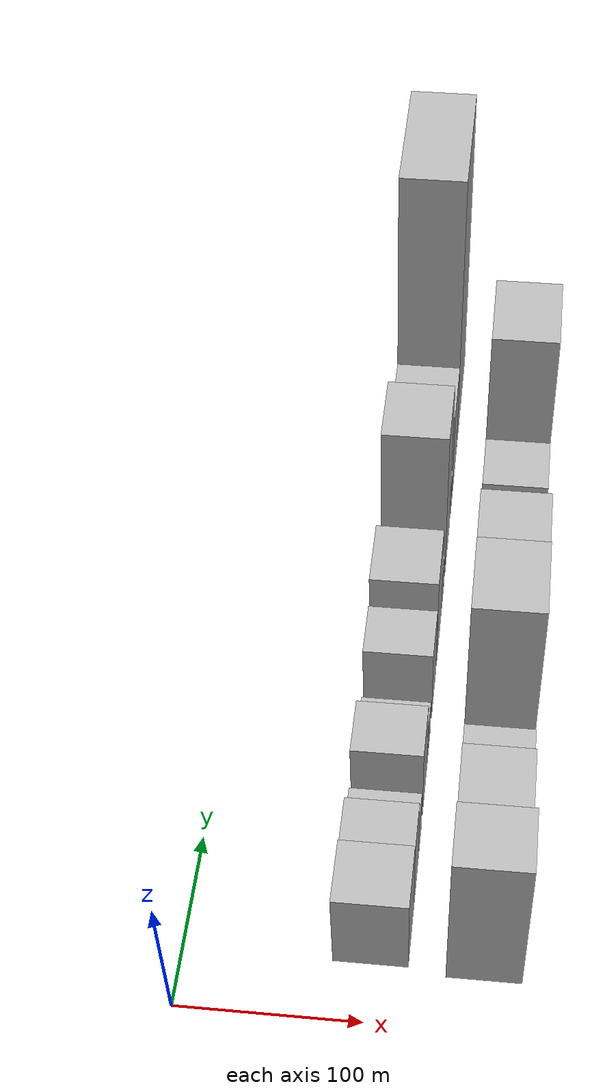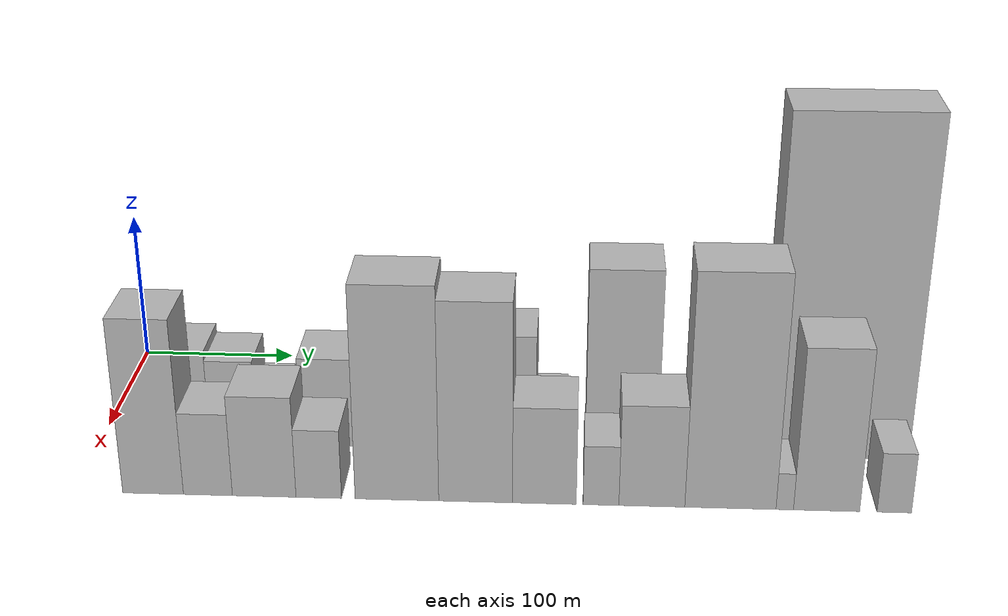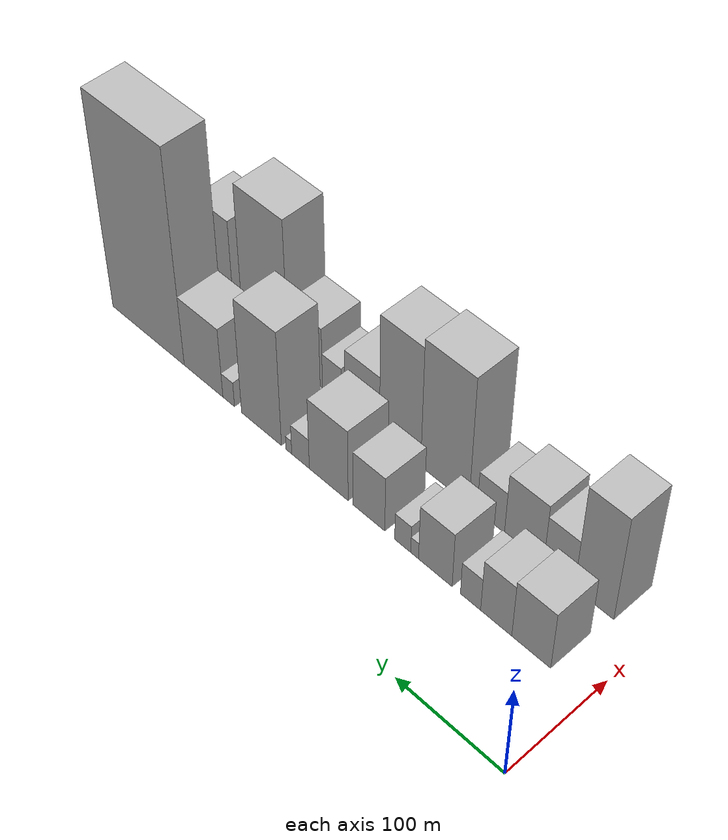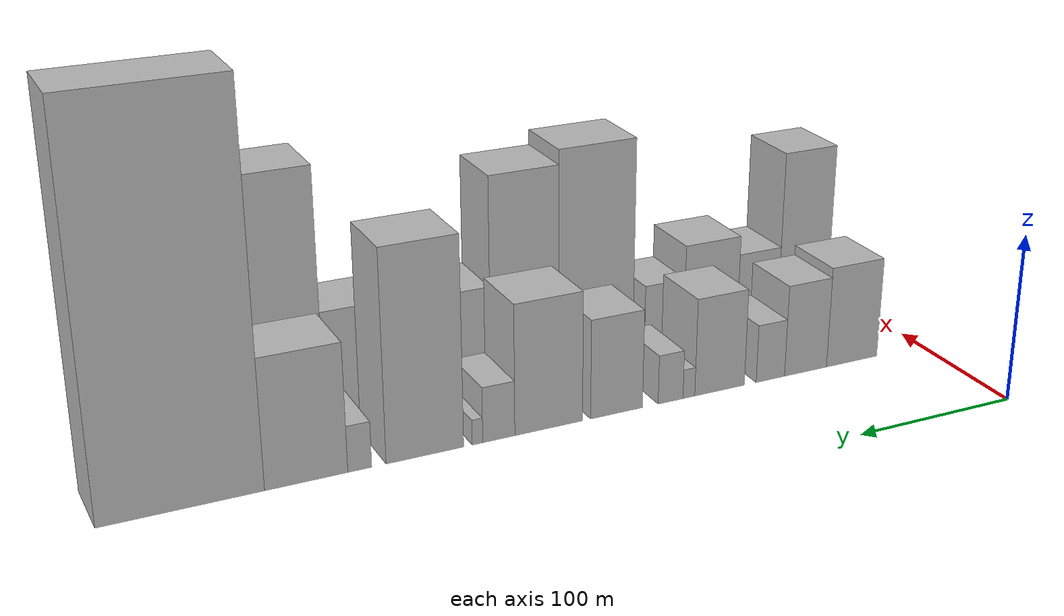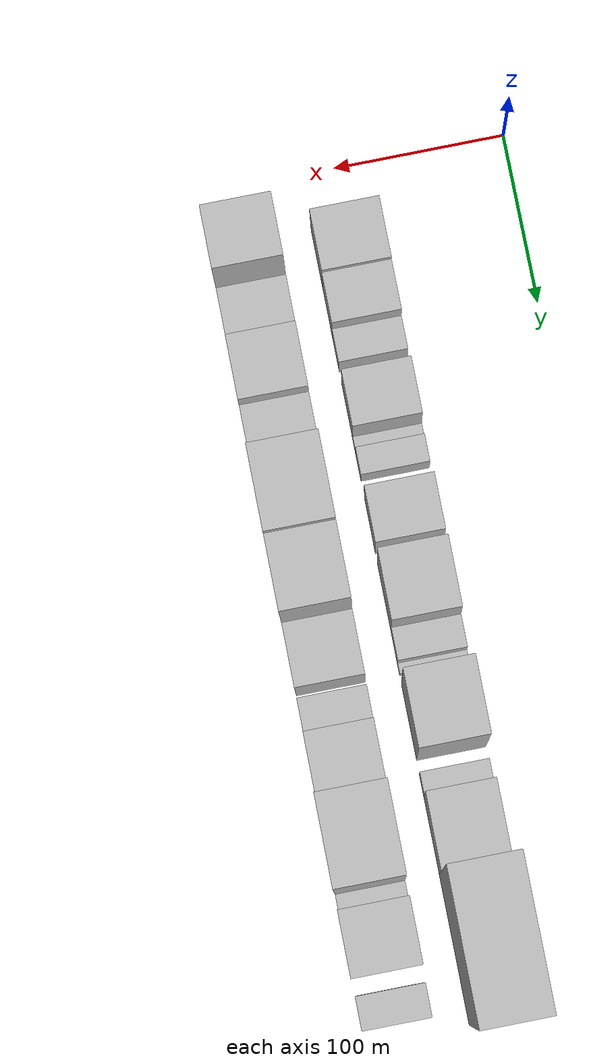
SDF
<sdf version="1.6">
 <world name="default">
  <model name="building_15">
   <static>1</static>
   <pose>100.0000 50.7926 0 0.000000 0.000000 0.000000</pose>
   <link name="link">
    <pose>0 0 31.50 0 0 0</pose>
    <collision name="collision"><geometry><box><size>40.0000 35.7253 63.0000</size></box></geometry></collision>
    <visual name="visual">
     <cast_shadows>0</cast_shadows>
     <geometry><box><size>40.0000 35.7253 63.0000</size></box></geometry>
     <material>
      <script>
       <uri>model://HANNAS_wall/materials/scripts</uri>
       <uri>model://HANNAS_wall/materials/textures</uri>
       <name>vrc/HANNAS_wall</name>
      </script>
     </material>
    </visual>
   </link>
  </model>
  <model name="building_16">
   <static>1</static>
   <pose>100.0000 83.2587 0 0.000000 0.000000 0.000000</pose>
   <link name="link">
    <pose>0 0 28.50 0 0 0</pose>
    <collision name="collision"><geometry><box><size>40.0000 29.2071 57.0000</size></box></geometry></collision>
    <visual name="visual">
     <cast_shadows>0</cast_shadows>
     <geometry><box><size>40.0000 29.2071 57.0000</size></box></geometry>
     <material>
      <script>
       <uri>model://HANNAS_wall/materials/scripts</uri>
       <uri>model://HANNAS_wall/materials/textures</uri>
       <name>vrc/HANNAS_wall</name>
      </script>
     </material>
    </visual>
   </link>
  </model>
  <model name="building_17">
   <static>1</static>
   <pose>100.0000 107.5433 0 0.000000 0.000000 0.000000</pose>
   <link name="link">
    <pose>0 0 18.00 0 0 0</pose>
    <collision name="collision"><geometry><box><size>40.0000 19.3620 36.0000</size></box></geometry></collision>
    <visual name="visual">
     <cast_shadows>0</cast_shadows>
     <geometry><box><size>40.0000 19.3620 36.0000</size></box></geometry>
     <material>
      <script>
       <uri>model://HANNAS_wall/materials/scripts</uri>
       <uri>model://HANNAS_wall/materials/textures</uri>
       <name>vrc/HANNAS_wall</name>
      </script>
     </material>
    </visual>
   </link>
  </model>
  <model name="building_18">
   <static>1</static>
   <pose>100.0000 141.6739 0 0.000000 0.000000 0.000000</pose>
   <link name="link">
    <pose>0 0 30.00 0 0 0</pose>
    <collision name="collision"><geometry><box><size>40.0000 32.8991 60.0000</size></box></geometry></collision>
    <visual name="visual">
     <cast_shadows>0</cast_shadows>
     <geometry><box><size>40.0000 32.8991 60.0000</size></box></geometry>
     <material>
      <script>
       <uri>model://HANNAS_wall/materials/scripts</uri>
       <uri>model://HANNAS_wall/materials/textures</uri>
       <name>vrc/HANNAS_wall</name>
      </script>
     </material>
    </visual>
   </link>
  </model>
  <model name="building_19">
   <static>1</static>
   <pose>100.0000 161.9813 0 0.000000 0.000000 0.000000</pose>
   <link name="link">
    <pose>0 0 9.00 0 0 0</pose>
    <collision name="collision"><geometry><box><size>40.0000 7.7157 18.0000</size></box></geometry></collision>
    <visual name="visual">
     <cast_shadows>0</cast_shadows>
     <geometry><box><size>40.0000 7.7157 18.0000</size></box></geometry>
     <material>
      <script>
       <uri>model://HANNAS_wall/materials/scripts</uri>
       <uri>model://HANNAS_wall/materials/textures</uri>
       <name>vrc/HANNAS_wall</name>
      </script>
     </material>
    </visual>
   </link>
  </model>
  <model name="building_20">
   <static>1</static>
   <pose>100.0000 173.8858 0 0.000000 0.000000 0.000000</pose>
   <link name="link">
    <pose>0 0 15.00 0 0 0</pose>
    <collision name="collision"><geometry><box><size>40.0000 16.0933 30.0000</size></box></geometry></collision>
    <visual name="visual">
     <cast_shadows>0</cast_shadows>
     <geometry><box><size>40.0000 16.0933 30.0000</size></box></geometry>
     <material>
      <script>
       <uri>model://HANNAS_wall/materials/scripts</uri>
       <uri>model://HANNAS_wall/materials/textures</uri>
       <name>vrc/HANNAS_wall</name>
      </script>
     </material>
    </visual>
   </link>
  </model>
  <model name="building_21">
   <static>1</static>
   <pose>100.0000 208.2888 0 0.000000 0.000000 0.000000</pose>
   <link name="link">
    <pose>0 0 30.00 0 0 0</pose>
    <collision name="collision"><geometry><box><size>40.0000 32.7128 60.0000</size></box></geometry></collision>
    <visual name="visual">
     <cast_shadows>0</cast_shadows>
     <geometry><box><size>40.0000 32.7128 60.0000</size></box></geometry>
     <material>
      <script>
       <uri>model://HANNAS_wall/materials/scripts</uri>
       <uri>model://HANNAS_wall/materials/textures</uri>
       <name>vrc/HANNAS_wall</name>
      </script>
     </material>
    </visual>
   </link>
  </model>
  <model name="building_22">
   <static>1</static>
   <pose>100.0000 250.1986 0 0.000000 0.000000 0.000000</pose>
   <link name="link">
    <pose>0 0 39.00 0 0 0</pose>
    <collision name="collision"><geometry><box><size>40.0000 41.1067 78.0000</size></box></geometry></collision>
    <visual name="visual">
     <cast_shadows>0</cast_shadows>
     <geometry><box><size>40.0000 41.1067 78.0000</size></box></geometry>
     <material>
      <script>
       <uri>model://HANNAS_wall/materials/scripts</uri>
       <uri>model://HANNAS_wall/materials/textures</uri>
       <name>vrc/HANNAS_wall</name>
      </script>
     </material>
    </visual>
   </link>
  </model>
  <model name="building_23">
   <static>1</static>
   <pose>100.0000 280.2710 0 0.000000 0.000000 0.000000</pose>
   <link name="link">
    <pose>0 0 16.50 0 0 0</pose>
    <collision name="collision"><geometry><box><size>40.0000 19.0381 33.0000</size></box></geometry></collision>
    <visual name="visual">
     <cast_shadows>0</cast_shadows>
     <geometry><box><size>40.0000 19.0381 33.0000</size></box></geometry>
     <material>
      <script>
       <uri>model://HANNAS_wall/materials/scripts</uri>
       <uri>model://HANNAS_wall/materials/textures</uri>
       <name>vrc/HANNAS_wall</name>
      </script>
     </material>
    </visual>
   </link>
  </model>
  <model name="building_24">
   <static>1</static>
   <pose>100.0000 292.8816 0 0.000000 0.000000 0.000000</pose>
   <link name="link">
    <pose>0 0 7.50 0 0 0</pose>
    <collision name="collision"><geometry><box><size>40.0000 6.1832 15.0000</size></box></geometry></collision>
    <visual name="visual">
     <cast_shadows>0</cast_shadows>
     <geometry><box><size>40.0000 6.1832 15.0000</size></box></geometry>
     <material>
      <script>
       <uri>model://HANNAS_wall/materials/scripts</uri>
       <uri>model://HANNAS_wall/materials/textures</uri>
       <name>vrc/HANNAS_wall</name>
      </script>
     </material>
    </visual>
   </link>
  </model>
  <model name="building_25">
   <static>1</static>
   <pose>100.0000 323.1472 0 0.000000 0.000000 0.000000</pose>
   <link name="link">
    <pose>0 0 61.50 0 0 0</pose>
    <collision name="collision"><geometry><box><size>40.0000 44.3479 123.0000</size></box></geometry></collision>
    <visual name="visual">
     <cast_shadows>0</cast_shadows>
     <geometry><box><size>40.0000 44.3479 123.0000</size></box></geometry>
     <material>
      <script>
       <uri>model://HANNAS_wall/materials/scripts</uri>
       <uri>model://HANNAS_wall/materials/textures</uri>
       <name>vrc/HANNAS_wall</name>
      </script>
     </material>
    </visual>
   </link>
  </model>
  <model name="building_26">
   <static>1</static>
   <pose>100.0000 359.9304 0 0.000000 0.000000 0.000000</pose>
   <link name="link">
    <pose>0 0 13.50 0 0 0</pose>
    <collision name="collision"><geometry><box><size>40.0000 13.2186 27.0000</size></box></geometry></collision>
    <visual name="visual">
     <cast_shadows>0</cast_shadows>
     <geometry><box><size>40.0000 13.2186 27.0000</size></box></geometry>
     <material>
      <script>
       <uri>model://HANNAS_wall/materials/scripts</uri>
       <uri>model://HANNAS_wall/materials/textures</uri>
       <name>vrc/HANNAS_wall</name>
      </script>
     </material>
    </visual>
   </link>
  </model>
  <model name="building_27">
   <static>1</static>
   <pose>100.0000 388.9986 0 0.000000 0.000000 0.000000</pose>
   <link name="link">
    <pose>0 0 37.50 0 0 0</pose>
    <collision name="collision"><geometry><box><size>40.0000 44.9178 75.0000</size></box></geometry></collision>
    <visual name="visual">
     <cast_shadows>0</cast_shadows>
     <geometry><box><size>40.0000 44.9178 75.0000</size></box></geometry>
     <material>
      <script>
       <uri>model://HANNAS_wall/materials/scripts</uri>
       <uri>model://HANNAS_wall/materials/textures</uri>
       <name>vrc/HANNAS_wall</name>
      </script>
     </material>
    </visual>
   </link>
  </model>
  <model name="building_28">
   <static>1</static>
   <pose>100.0000 454.6570 0 0.000000 0.000000 0.000000</pose>
   <link name="link">
    <pose>0 0 111.00 0 0 0</pose>
    <collision name="collision"><geometry><box><size>40.0000 86.3990 222.0000</size></box></geometry></collision>
    <visual name="visual">
     <cast_shadows>0</cast_shadows>
     <geometry><box><size>40.0000 86.3990 222.0000</size></box></geometry>
     <material>
      <script>
       <uri>model://HANNAS_wall/materials/scripts</uri>
       <uri>model://HANNAS_wall/materials/textures</uri>
       <name>vrc/HANNAS_wall</name>
      </script>
     </material>
    </visual>
   </link>
  </model>
  <model name="building_40">
   <static>1</static>
   <pose>160.0000 47.2035 0 0.000000 0.000000 0.000000</pose>
   <link name="link">
    <pose>0 0 57.00 0 0 0</pose>
    <collision name="collision"><geometry><box><size>40.0000 36.0578 114.0000</size></box></geometry></collision>
    <visual name="visual">
     <cast_shadows>0</cast_shadows>
     <geometry><box><size>40.0000 36.0578 114.0000</size></box></geometry>
     <material>
      <script>
       <uri>model://HANNAS_wall/materials/scripts</uri>
       <uri>model://HANNAS_wall/materials/textures</uri>
       <name>vrc/HANNAS_wall</name>
      </script>
     </material>
    </visual>
   </link>
  </model>
  <model name="building_41">
   <static>1</static>
   <pose>160.0000 79.7289 0 0.000000 0.000000 0.000000</pose>
   <link name="link">
    <pose>0 0 27.00 0 0 0</pose>
    <collision name="collision"><geometry><box><size>40.0000 28.9931 54.0000</size></box></geometry></collision>
    <visual name="visual">
     <cast_shadows>0</cast_shadows>
     <geometry><box><size>40.0000 28.9931 54.0000</size></box></geometry>
     <material>
      <script>
       <uri>model://HANNAS_wall/materials/scripts</uri>
       <uri>model://HANNAS_wall/materials/textures</uri>
       <name>vrc/HANNAS_wall</name>
      </script>
     </material>
    </visual>
   </link>
  </model>
  <model name="building_42">
   <static>1</static>
   <pose>160.0000 113.0043 0 0.000000 0.000000 0.000000</pose>
   <link name="link">
    <pose>0 0 33.00 0 0 0</pose>
    <collision name="collision"><geometry><box><size>40.0000 37.5576 66.0000</size></box></geometry></collision>
    <visual name="visual">
     <cast_shadows>0</cast_shadows>
     <geometry><box><size>40.0000 37.5576 66.0000</size></box></geometry>
     <material>
      <script>
       <uri>model://HANNAS_wall/materials/scripts</uri>
       <uri>model://HANNAS_wall/materials/textures</uri>
       <name>vrc/HANNAS_wall</name>
      </script>
     </material>
    </visual>
   </link>
  </model>
  <model name="building_43">
   <static>1</static>
   <pose>160.0000 145.1996 0 0.000000 0.000000 0.000000</pose>
   <link name="link">
    <pose>0 0 22.50 0 0 0</pose>
    <collision name="collision"><geometry><box><size>40.0000 26.8331 45.0000</size></box></geometry></collision>
    <visual name="visual">
     <cast_shadows>0</cast_shadows>
     <geometry><box><size>40.0000 26.8331 45.0000</size></box></geometry>
     <material>
      <script>
       <uri>model://HANNAS_wall/materials/scripts</uri>
       <uri>model://HANNAS_wall/materials/textures</uri>
       <name>vrc/HANNAS_wall</name>
      </script>
     </material>
    </visual>
   </link>
  </model>
  <model name="building_44">
   <static>1</static>
   <pose>160.0000 191.1403 0 0.000000 0.000000 0.000000</pose>
   <link name="link">
    <pose>0 0 69.00 0 0 0</pose>
    <collision name="collision"><geometry><box><size>40.0000 49.0483 138.0000</size></box></geometry></collision>
    <visual name="visual">
     <cast_shadows>0</cast_shadows>
     <geometry><box><size>40.0000 49.0483 138.0000</size></box></geometry>
     <material>
      <script>
       <uri>model://HANNAS_wall/materials/scripts</uri>
       <uri>model://HANNAS_wall/materials/textures</uri>
       <name>vrc/HANNAS_wall</name>
      </script>
     </material>
    </visual>
   </link>
  </model>
  <model name="building_45">
   <static>1</static>
   <pose>160.0000 237.2423 0 0.000000 0.000000 0.000000</pose>
   <link name="link">
    <pose>0 0 64.50 0 0 0</pose>
    <collision name="collision"><geometry><box><size>40.0000 43.1557 129.0000</size></box></geometry></collision>
    <visual name="visual">
     <cast_shadows>0</cast_shadows>
     <geometry><box><size>40.0000 43.1557 129.0000</size></box></geometry>
     <material>
      <script>
       <uri>model://HANNAS_wall/materials/scripts</uri>
       <uri>model://HANNAS_wall/materials/textures</uri>
       <name>vrc/HANNAS_wall</name>
      </script>
     </material>
    </visual>
   </link>
  </model>
  <model name="building_46">
   <static>1</static>
   <pose>160.0000 277.3222 0 0.000000 0.000000 0.000000</pose>
   <link name="link">
    <pose>0 0 31.50 0 0 0</pose>
    <collision name="collision"><geometry><box><size>40.0000 37.0041 63.0000</size></box></geometry></collision>
    <visual name="visual">
     <cast_shadows>0</cast_shadows>
     <geometry><box><size>40.0000 37.0041 63.0000</size></box></geometry>
     <material>
      <script>
       <uri>model://HANNAS_wall/materials/scripts</uri>
       <uri>model://HANNAS_wall/materials/textures</uri>
       <name>vrc/HANNAS_wall</name>
      </script>
     </material>
    </visual>
   </link>
  </model>
  <model name="building_47">
   <static>1</static>
   <pose>160.0000 310.2127 0 0.000000 0.000000 0.000000</pose>
   <link name="link">
    <pose>0 0 19.50 0 0 0</pose>
    <collision name="collision"><geometry><box><size>40.0000 20.7770 39.0000</size></box></geometry></collision>
    <visual name="visual">
     <cast_shadows>0</cast_shadows>
     <geometry><box><size>40.0000 20.7770 39.0000</size></box></geometry>
     <material>
      <script>
       <uri>model://HANNAS_wall/materials/scripts</uri>
       <uri>model://HANNAS_wall/materials/textures</uri>
       <name>vrc/HANNAS_wall</name>
      </script>
     </material>
    </visual>
   </link>
  </model>
  <model name="building_48">
   <static>1</static>
   <pose>160.0000 339.6943 0 0.000000 0.000000 0.000000</pose>
   <link name="link">
    <pose>0 0 33.00 0 0 0</pose>
    <collision name="collision"><geometry><box><size>40.0000 38.1860 66.0000</size></box></geometry></collision>
    <visual name="visual">
     <cast_shadows>0</cast_shadows>
     <geometry><box><size>40.0000 38.1860 66.0000</size></box></geometry>
     <material>
      <script>
       <uri>model://HANNAS_wall/materials/scripts</uri>
       <uri>model://HANNAS_wall/materials/textures</uri>
       <name>vrc/HANNAS_wall</name>
      </script>
     </material>
    </visual>
   </link>
  </model>
  <model name="building_49">
   <static>1</static>
   <pose>160.0000 385.0892 0 0.000000 0.000000 0.000000</pose>
   <link name="link">
    <pose>0 0 75.00 0 0 0</pose>
    <collision name="collision"><geometry><box><size>40.0000 52.6038 150.0000</size></box></geometry></collision>
    <visual name="visual">
     <cast_shadows>0</cast_shadows>
     <geometry><box><size>40.0000 52.6038 150.0000</size></box></geometry>
     <material>
      <script>
       <uri>model://HANNAS_wall/materials/scripts</uri>
       <uri>model://HANNAS_wall/materials/textures</uri>
       <name>vrc/HANNAS_wall</name>
      </script>
     </material>
    </visual>
   </link>
  </model>
  <model name="building_50">
   <static>1</static>
   <pose>160.0000 416.4055 0 0.000000 0.000000 0.000000</pose>
   <link name="link">
    <pose>0 0 12.00 0 0 0</pose>
    <collision name="collision"><geometry><box><size>40.0000 10.0289 24.0000</size></box></geometry></collision>
    <visual name="visual">
     <cast_shadows>0</cast_shadows>
     <geometry><box><size>40.0000 10.0289 24.0000</size></box></geometry>
     <material>
      <script>
       <uri>model://HANNAS_wall/materials/scripts</uri>
       <uri>model://HANNAS_wall/materials/textures</uri>
       <name>vrc/HANNAS_wall</name>
      </script>
     </material>
    </visual>
   </link>
  </model>
  <model name="building_51">
   <static>1</static>
   <pose>160.0000 440.4095 0 0.000000 0.000000 0.000000</pose>
   <link name="link">
    <pose>0 0 52.50 0 0 0</pose>
    <collision name="collision"><geometry><box><size>40.0000 37.9792 105.0000</size></box></geometry></collision>
    <visual name="visual">
     <cast_shadows>0</cast_shadows>
     <geometry><box><size>40.0000 37.9792 105.0000</size></box></geometry>
     <material>
      <script>
       <uri>model://HANNAS_wall/materials/scripts</uri>
       <uri>model://HANNAS_wall/materials/textures</uri>
       <name>vrc/HANNAS_wall</name>
      </script>
     </material>
    </visual>
   </link>
  </model>
  <model name="building_52">
   <static>1</static>
   <pose>160.0000 479.2420 0 0.000000 0.000000 0.000000</pose>
   <link name="link">
    <pose>0 0 19.50 0 0 0</pose>
    <collision name="collision"><geometry><box><size>40.0000 19.6858 39.0000</size></box></geometry></collision>
    <visual name="visual">
     <cast_shadows>0</cast_shadows>
     <geometry><box><size>40.0000 19.6858 39.0000</size></box></geometry>
     <material>
      <script>
       <uri>model://HANNAS_wall/materials/scripts</uri>
       <uri>model://HANNAS_wall/materials/textures</uri>
       <name>vrc/HANNAS_wall</name>
      </script>
     </material>
    </visual>
   </link>
  </model>
 </world>
</sdf>
